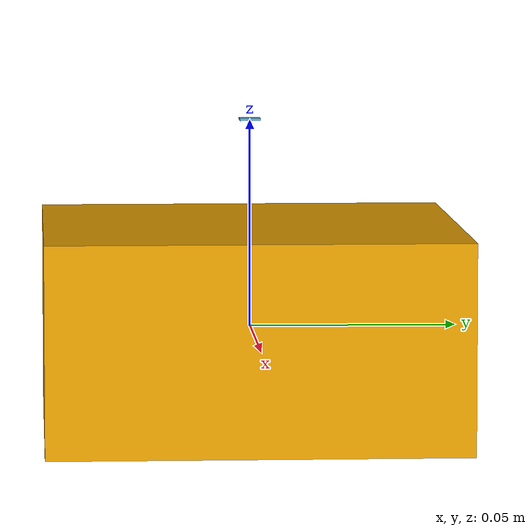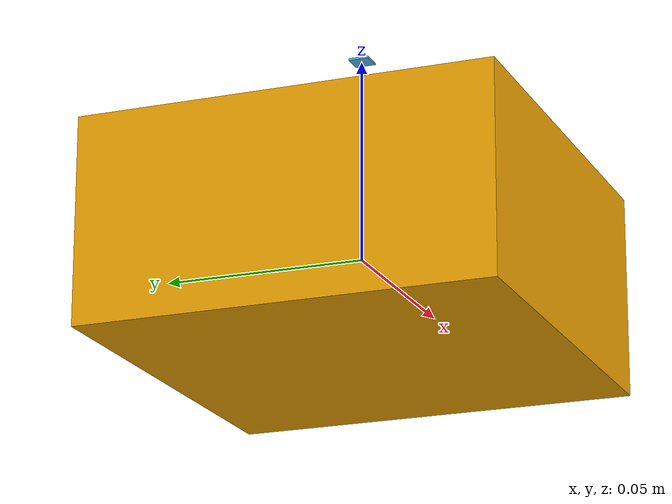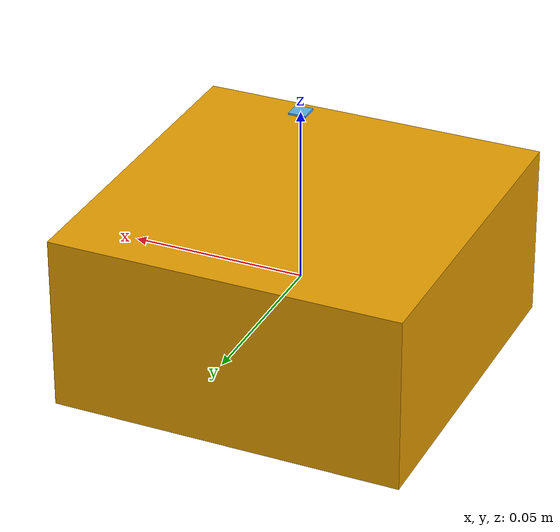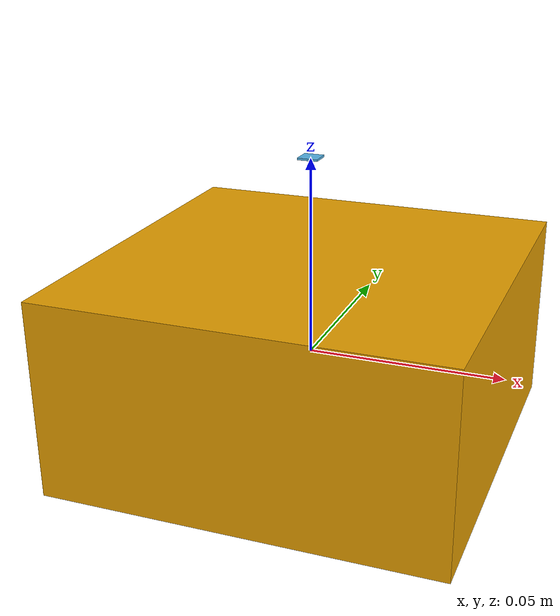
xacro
<?xml version="1.0"?>
<robot name="aruco_cube" xmlns:xacro="http://www.ros.org/wiki/xacro">

    <!-- Define the base link as a cube -->
    <link name="base_link">
        <visual>
            <geometry>
                <box size="0.1 0.1 0.05" /> <!-- Adjust size to 10x10x5 mm^3 -->
            </geometry>
        </visual>
    </link>

    <!-- Attach the Aruco marker to the top of the cube -->
    <link name="aruco_marker">
        <visual>
            <origin xyz="0 0 0.025" rpy="0 0 0"/> <!-- Position the marker on top of the cube -->
            <geometry>
                <mesh filename="package://my_robot_description/meshes/visual/id24_floor_marker.dae" scale="0.01 0.01 0.01"/> <!-- Adjust scale as needed -->
            </geometry>
        </visual>
    </link>

    <!-- Define joint connecting base_link to aruco_marker -->
    <joint name="marker_joint" type="fixed">
        <parent link="base_link"/>
        <child link="aruco_marker"/>
        <origin xyz="0 0 0.025" rpy="0 0 0"/> <!-- Ensure marker is on top of the cube -->
    </joint>
</robot>
